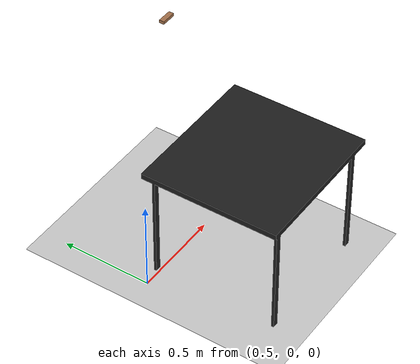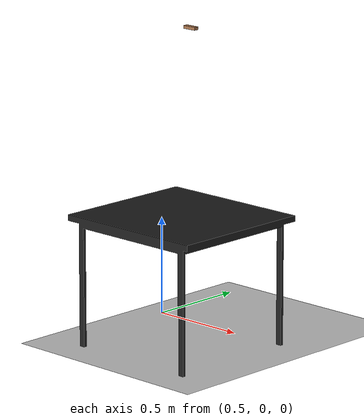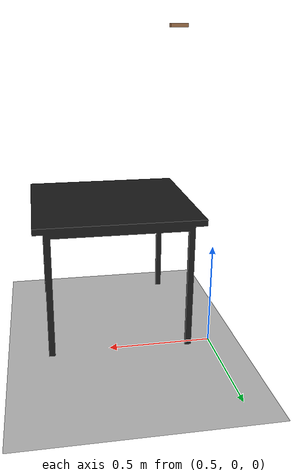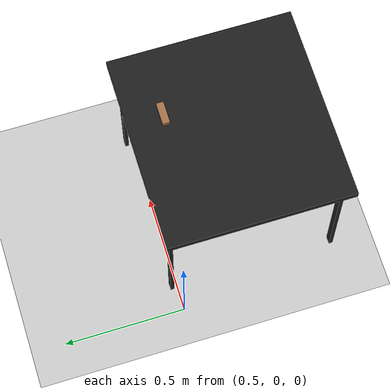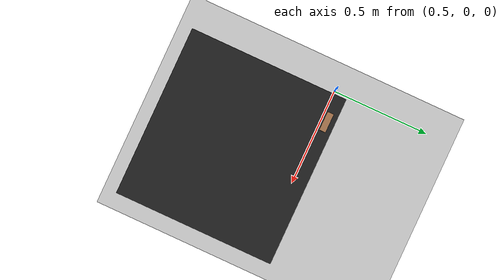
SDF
<sdf version="1.4">
 <world name="default">
  <physics type="ode">
   <gravity>0 0 -9.81</gravity>
   <ode>
    <solver><type>quick</type><iters>20</iters><sor>1</sor></solver>
    <constraints>
     <cfm>0</cfm>
     <erp>0.2</erp>
     <contact_max_correcting_vel>100</contact_max_correcting_vel>
     <contact_surface_layer>0</contact_surface_layer>
    </constraints>
   </ode>
   <real_time_update_rate>1000</real_time_update_rate>
   <max_step_size>0.001</max_step_size>
   <real_time_factor>1</real_time_factor>
  </physics>
  <light name="sun" type="directional">
   <pose>0 0 10 0 -0 0</pose>
   <diffuse>0.8 0.8 0.8 1</diffuse>
   <specular>0.2 0.2 0.2 1</specular>
   <attenuation>
    <range>1000</range>
    <constant>0.9</constant>
    <linear>0.01</linear>
    <quadratic>0.001</quadratic>
   </attenuation>
   <direction>-0.5 0.1 -0.9</direction>
  </light>
  <model name="ground_plane">
   <static>1</static>
   <link name="link">
    <collision name="collision">
     <geometry><plane><normal>0 0 1</normal><size>100 100</size></plane></geometry>
     <surface><friction><ode><mu>100</mu><mu2>50</mu2></ode></friction></surface>
    </collision>
    <visual name="visual">
     <cast_shadows>0</cast_shadows>
     <geometry><plane><normal>0 0 1</normal><size>100 100</size></plane></geometry>
     <material>
      <script><uri>file://media/materials/scripts/gazebo.material</uri><name>Gazebo/Grey</name></script>
     </material>
    </visual>
    <velocity_decay><linear>0</linear><angular>0</angular></velocity_decay>
   </link>
  </model>
  <scene><ambient>0.4 0.4 0.4 1</ambient><background>0.7 0.7 0.7 1</background><shadows>1</shadows></scene>
  <spherical_coordinates>
   <surface_model>EARTH_WGS84</surface_model>
   <latitude_deg>0</latitude_deg>
   <longitude_deg>0</longitude_deg>
   <elevation>0</elevation>
   <heading_deg>0</heading_deg>
  </spherical_coordinates>
  <model name="kitchen_table">
   <static>1</static>
   <link name="link">
    <collision name="colision1">
     <geometry>
      <mesh><uri>model://kitchen_table/meshes/kitchen_table.stl</uri><scale>1 1 1</scale></mesh>
     </geometry>
    </collision>
    <visual name="visual1">
     <geometry>
      <mesh><uri>model://kitchen_table/meshes/kitchen_table.stl</uri><scale>1 1 1</scale></mesh>
     </geometry>
     <material>
      <script><uri>file://media/materials/scripts/gazebo.material</uri><name>Gazebo/FlatBlack</name></script>
     </material>
    </visual>
    <velocity_decay><linear>0</linear><angular>0</angular></velocity_decay>
   </link>
   <pose>0.547429 -0.69646 0 0 -0 0</pose>
  </model>
  <model name="jenga_block">
   <pose>0.7 0 1.5 0 0 0</pose>
   <link name="link">
    <collision name="collision">
     <geometry><box><size>0.075 0.025 0.015</size></box></geometry>
     <surface><friction><ode><mu>1000.0</mu><mu2>1000.0</mu2></ode></friction></surface>
    </collision>
    <visual name="visual">
     <geometry><box><size>0.075 0.025 0.015</size></box></geometry>
     <material><ambient>0.65 0.45 0.30 1</ambient></material>
    </visual>
    <inertial><mass>0.02</mass><inertia><ixx>1e-5</ixx><iyy>1e-5</iyy><izz>1e-5</izz></inertia></inertial>
   </link>
   <static>false</static>
  </model>
 </world>
</sdf>
